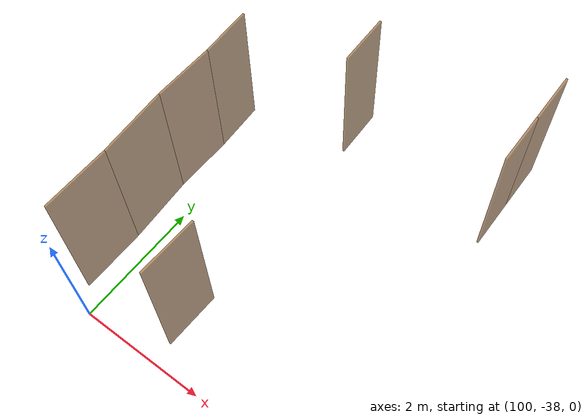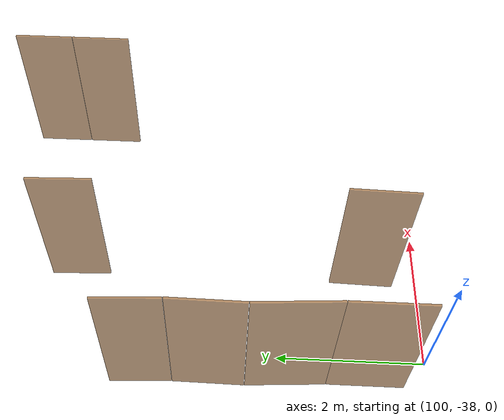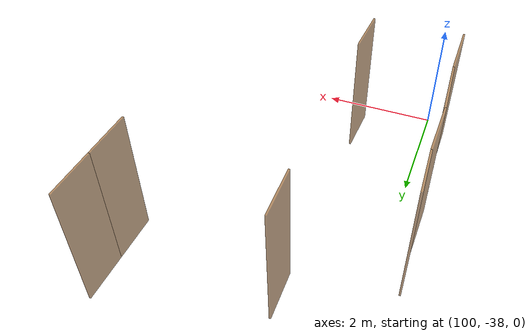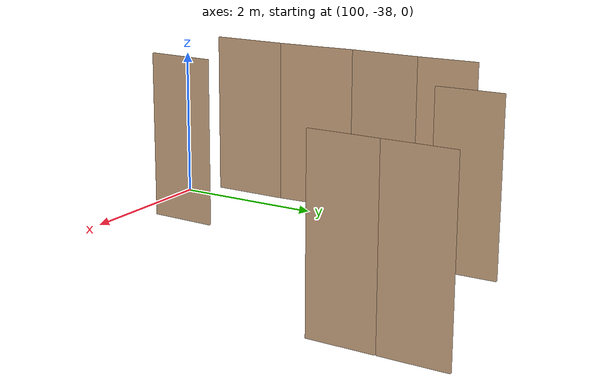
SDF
<sdf version="1.7">
 <world name="sim_world">
  <model name="puerta11">
   <pose>99.59689328884753 -34.192335040117115 0.0 0 0 -1.523227629626105</pose>
   <link name="right">
    <pose>0 0 1.11 0 0 0</pose>
    <visual name="right_visual">
     <geometry><box><size>0.8234942961766232 0.03 2.2</size></box></geometry>
     <material>
      <ambient>0.5 0.25 0 0.6</ambient>
      <diffuse>0.5 0.25 0 0.6</diffuse>
      <pbr><metal><metalness>0.0</metalness></metal></pbr>
     </material>
    </visual>
    <collision name="right_collision">
     <geometry><box><size>0.8234942961766232 0.03 2.2</size></box></geometry>
     <surface><contact><collide_bitmask>0x02</collide_bitmask></contact></surface>
    </collision>
    <inertial>
     <mass>50.0</mass>
     <inertia><ixx>20.17041666666667</ixx><iyy>22.992261899314304</iyy><izz>2.8293452326476336</izz></inertia>
    </inertial>
   </link>
   <joint name="right_joint" type="revolute">
    <parent>world</parent>
    <child>right</child>
    <axis><xyz>0 0 1</xyz><limit><lower>0</lower><upper>1.57</upper></limit></axis>
    <pose>0.4167471480883116 0 0 0 0 0</pose>
   </joint>
   <plugin name="register_component" filename="libregister_component.so">
    <component name="Door">
     <v_max_door>0.5</v_max_door>
     <a_max_door>0.3</a_max_door>
     <a_nom_door>0.15</a_nom_door>
     <dx_min_door>0.01</dx_min_door>
     <f_max_door>500.0</f_max_door>
     <ros_interface>true</ros_interface>
     <door name="puerta11" type="SwingDoor" left_joint_name="empty_joint" right_joint_name="right_joint"/>
    </component>
   </plugin>
  </model>
  <model name="puerta12">
   <pose>99.61010438448491 -35.09098405833076 0.0 0 0 1.5571033318122445</pose>
   <link name="right">
    <pose>0 0 1.11 0 0 0</pose>
    <visual name="right_visual">
     <geometry><box><size>0.9548370211000183 0.03 2.2</size></box></geometry>
     <material>
      <ambient>0.5 0.25 0 0.6</ambient>
      <diffuse>0.5 0.25 0 0.6</diffuse>
      <pbr><metal><metalness>0.0</metalness></metal></pbr>
     </material>
    </visual>
    <collision name="right_collision">
     <geometry><box><size>0.9548370211000183 0.03 2.2</size></box></geometry>
     <surface><contact><collide_bitmask>0x02</collide_bitmask></contact></surface>
    </collision>
    <inertial>
     <mass>50.0</mass>
     <inertia><ixx>20.17041666666667</ixx><iyy>23.965473903596493</iyy><izz>3.8025572369298204</izz></inertia>
    </inertial>
   </link>
   <joint name="right_joint" type="revolute">
    <parent>world</parent>
    <child>right</child>
    <axis><xyz>0 0 -1</xyz><limit><lower>0</lower><upper>1.57</upper></limit></axis>
    <pose>0.48241851055000917 0 0 0 0 0</pose>
   </joint>
   <plugin name="register_component" filename="libregister_component.so">
    <component name="Door">
     <v_max_door>0.5</v_max_door>
     <a_max_door>0.3</a_max_door>
     <a_nom_door>0.15</a_nom_door>
     <dx_min_door>0.01</dx_min_door>
     <f_max_door>500.0</f_max_door>
     <ros_interface>true</ros_interface>
     <door name="puerta12" type="SwingDoor" left_joint_name="empty_joint" right_joint_name="right_joint"/>
    </component>
   </plugin>
  </model>
  <model name="puerta13">
   <pose>99.63652657575972 -36.11520159542911 0.0 0 0 -1.50991734569296</pose>
   <link name="right">
    <pose>0 0 1.11 0 0 0</pose>
    <visual name="right_visual">
     <geometry><box><size>1.0756998205890995 0.03 2.2</size></box></geometry>
     <material>
      <ambient>0.5 0.25 0 0.6</ambient>
      <diffuse>0.5 0.25 0 0.6</diffuse>
      <pbr><metal><metalness>0.0</metalness></metal></pbr>
     </material>
    </visual>
    <collision name="right_collision">
     <geometry><box><size>1.0756998205890995 0.03 2.2</size></box></geometry>
     <surface><contact><collide_bitmask>0x02</collide_bitmask></contact></surface>
    </collision>
    <inertial>
     <mass>50.0</mass>
     <inertia><ixx>20.17041666666667</ixx><iyy>24.98804210006426</iyy><izz>4.825125433397587</izz></inertia>
    </inertial>
   </link>
   <joint name="right_joint" type="revolute">
    <parent>world</parent>
    <child>right</child>
    <axis><xyz>0 0 1</xyz><limit><lower>0</lower><upper>1.57</upper></limit></axis>
    <pose>0.5428499102945498 0 0 0 0 0</pose>
   </joint>
   <plugin name="register_component" filename="libregister_component.so">
    <component name="Door">
     <v_max_door>0.5</v_max_door>
     <a_max_door>0.3</a_max_door>
     <a_nom_door>0.15</a_nom_door>
     <dx_min_door>0.01</dx_min_door>
     <f_max_door>500.0</f_max_door>
     <ros_interface>true</ros_interface>
     <door name="puerta13" type="SwingDoor" left_joint_name="empty_joint" right_joint_name="right_joint"/>
    </component>
   </plugin>
  </model>
  <model name="puerta14">
   <pose>99.66989090327709 -37.17492921124709 0.0 0 0 1.571446257648225</pose>
   <link name="right">
    <pose>0 0 1.11 0 0 0</pose>
    <visual name="right_visual">
     <geometry><box><size>1.025766946152035 0.03 2.2</size></box></geometry>
     <material>
      <ambient>0.5 0.25 0 0.6</ambient>
      <diffuse>0.5 0.25 0 0.6</diffuse>
      <pbr><metal><metalness>0.0</metalness></metal></pbr>
     </material>
    </visual>
    <collision name="right_collision">
     <geometry><box><size>1.025766946152035 0.03 2.2</size></box></geometry>
     <surface><contact><collide_bitmask>0x02</collide_bitmask></contact></surface>
    </collision>
    <inertial>
     <mass>50.0</mass>
     <inertia><ixx>20.17041666666667</ixx><iyy>24.550824282575302</iyy><izz>4.387907615908632</izz></inertia>
    </inertial>
   </link>
   <joint name="right_joint" type="revolute">
    <parent>world</parent>
    <child>right</child>
    <axis><xyz>0 0 -1</xyz><limit><lower>0</lower><upper>1.57</upper></limit></axis>
    <pose>0.5178834730760175 0 0 0 0 0</pose>
   </joint>
   <plugin name="register_component" filename="libregister_component.so">
    <component name="Door">
     <v_max_door>0.5</v_max_door>
     <a_max_door>0.3</a_max_door>
     <a_nom_door>0.15</a_nom_door>
     <dx_min_door>0.01</dx_min_door>
     <f_max_door>500.0</f_max_door>
     <ros_interface>true</ros_interface>
     <door name="puerta14" type="SwingDoor" left_joint_name="empty_joint" right_joint_name="right_joint"/>
    </component>
   </plugin>
  </model>
  <model name="puerta15">
   <pose>101.22894744592494 -37.20865116396483 0.0 0 0 -1.6013044931290397</pose>
   <link name="right">
    <pose>0 0 1.11 0 0 0</pose>
    <visual name="right_visual">
     <geometry><box><size>0.8934450750594292 0.03 2.2</size></box></geometry>
     <material>
      <ambient>0.5 0.25 0 0.6</ambient>
      <diffuse>0.5 0.25 0 0.6</diffuse>
      <pbr><metal><metalness>0.0</metalness></metal></pbr>
     </material>
    </visual>
    <collision name="right_collision">
     <geometry><box><size>0.8934450750594292 0.03 2.2</size></box></geometry>
     <surface><contact><collide_bitmask>0x02</collide_bitmask></contact></surface>
    </collision>
    <inertial>
     <mass>50.0</mass>
     <inertia><ixx>20.17041666666667</ixx><iyy>23.49268375894979</iyy><izz>3.3297670922831215</izz></inertia>
    </inertial>
   </link>
   <joint name="right_joint" type="revolute">
    <parent>world</parent>
    <child>right</child>
    <axis><xyz>0 0 1</xyz><limit><lower>0</lower><upper>1.57</upper></limit></axis>
    <pose>0.4517225375297146 0 0 0 0 0</pose>
   </joint>
   <plugin name="register_component" filename="libregister_component.so">
    <component name="Door">
     <v_max_door>0.5</v_max_door>
     <a_max_door>0.3</a_max_door>
     <a_nom_door>0.15</a_nom_door>
     <dx_min_door>0.01</dx_min_door>
     <f_max_door>500.0</f_max_door>
     <ros_interface>true</ros_interface>
     <door name="puerta15" type="SwingDoor" left_joint_name="empty_joint" right_joint_name="right_joint"/>
    </component>
   </plugin>
  </model>
  <model name="puerta16">
   <pose>103.8129578128484 -32.91683320781389 0.0 0 0 1.5707963267948966</pose>
   <link name="right">
    <pose>0.40783998586328707 0 1.11 0 0 0</pose>
    <visual name="right_visual">
     <geometry><box><size>0.8056799717265741 0.03 2.2</size></box></geometry>
     <material>
      <ambient>0.5 0.25 0 0.6</ambient>
      <diffuse>0.5 0.25 0 0.6</diffuse>
      <pbr><metal><metalness>0.0</metalness></metal></pbr>
     </material>
    </visual>
    <collision name="right_collision">
     <geometry><box><size>0.8056799717265741 0.03 2.2</size></box></geometry>
     <surface><contact><collide_bitmask>0x02</collide_bitmask></contact></surface>
    </collision>
    <inertial>
     <mass>50.0</mass>
     <inertia><ixx>20.17041666666667</ixx><iyy>22.871334236838894</iyy><izz>2.708417570172222</izz></inertia>
    </inertial>
   </link>
   <joint name="right_joint" type="revolute">
    <parent>world</parent>
    <child>right</child>
    <axis><xyz>0 0 -1</xyz><limit><lower>0</lower><upper>1.57</upper></limit></axis>
    <pose>0.40783998586328707 0 0 0 0 0</pose>
   </joint>
   <link name="left">
    <pose>-0.40783998586328707 0 1.11 0 0 0</pose>
    <visual name="left_visual">
     <geometry><box><size>0.8056799717265741 0.03 2.2</size></box></geometry>
     <material>
      <ambient>0.5 0.25 0 0.6</ambient>
      <diffuse>0.5 0.25 0 0.6</diffuse>
      <pbr><metal><metalness>0.0</metalness></metal></pbr>
     </material>
    </visual>
    <collision name="left_collision">
     <geometry><box><size>0.8056799717265741 0.03 2.2</size></box></geometry>
     <surface><contact><collide_bitmask>0x02</collide_bitmask></contact></surface>
    </collision>
    <inertial>
     <mass>50.0</mass>
     <inertia><ixx>20.17041666666667</ixx><iyy>22.871334236838894</iyy><izz>2.708417570172222</izz></inertia>
    </inertial>
   </link>
   <joint name="left_joint" type="revolute">
    <parent>world</parent>
    <child>left</child>
    <axis><xyz>0 0 -1</xyz><limit><lower>-1.57</lower><upper>0</upper></limit></axis>
    <pose>-0.40783998586328707 0 0 0 0 0</pose>
   </joint>
   <plugin name="register_component" filename="libregister_component.so">
    <component name="Door">
     <v_max_door>0.5</v_max_door>
     <a_max_door>0.3</a_max_door>
     <a_nom_door>0.15</a_nom_door>
     <dx_min_door>0.01</dx_min_door>
     <f_max_door>500.0</f_max_door>
     <ros_interface>true</ros_interface>
     <door name="puerta16" type="DoubleSwingDoor" left_joint_name="left_joint" right_joint_name="right_joint"/>
    </component>
   </plugin>
  </model>
  <model name="puerta70">
   <pose>101.2295995859962 -33.158924431691474 0.0 0 0 -1.5399058885565695</pose>
   <link name="right">
    <pose>0 0 1.11 0 0 0</pose>
    <visual name="right_visual">
     <geometry><box><size>0.8400388584261169 0.03 2.2</size></box></geometry>
     <material>
      <ambient>0.5 0.25 0 0.6</ambient>
      <diffuse>0.5 0.25 0 0.6</diffuse>
      <pbr><metal><metalness>0.0</metalness></metal></pbr>
     </material>
    </visual>
    <collision name="right_collision">
     <geometry><box><size>0.8400388584261169 0.03 2.2</size></box></geometry>
     <surface><contact><collide_bitmask>0x02</collide_bitmask></contact></surface>
    </collision>
    <inertial>
     <mass>50.0</mass>
     <inertia><ixx>20.17041666666667</ixx><iyy>23.106938681941063</iyy><izz>2.9440220152743906</izz></inertia>
    </inertial>
   </link>
   <joint name="right_joint" type="revolute">
    <parent>world</parent>
    <child>right</child>
    <axis><xyz>0 0 1</xyz><limit><lower>0</lower><upper>1.57</upper></limit></axis>
    <pose>0.42501942921305846 0 0 0 0 0</pose>
   </joint>
   <plugin name="register_component" filename="libregister_component.so">
    <component name="Door">
     <v_max_door>0.5</v_max_door>
     <a_max_door>0.3</a_max_door>
     <a_nom_door>0.15</a_nom_door>
     <dx_min_door>0.01</dx_min_door>
     <f_max_door>500.0</f_max_door>
     <ros_interface>true</ros_interface>
     <door name="puerta70" type="SwingDoor" left_joint_name="empty_joint" right_joint_name="right_joint"/>
    </component>
   </plugin>
  </model>
 </world>
</sdf>
